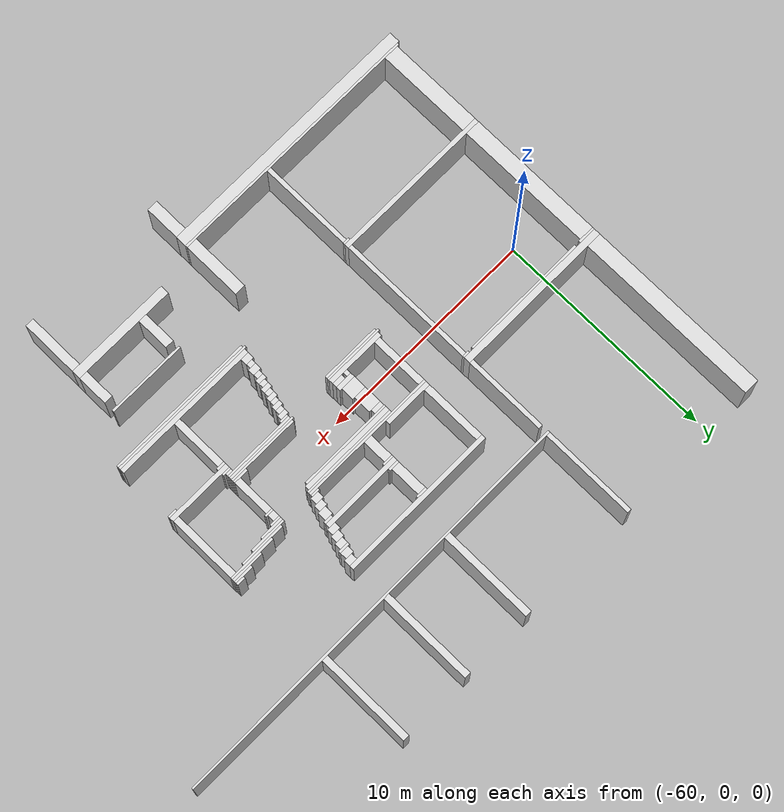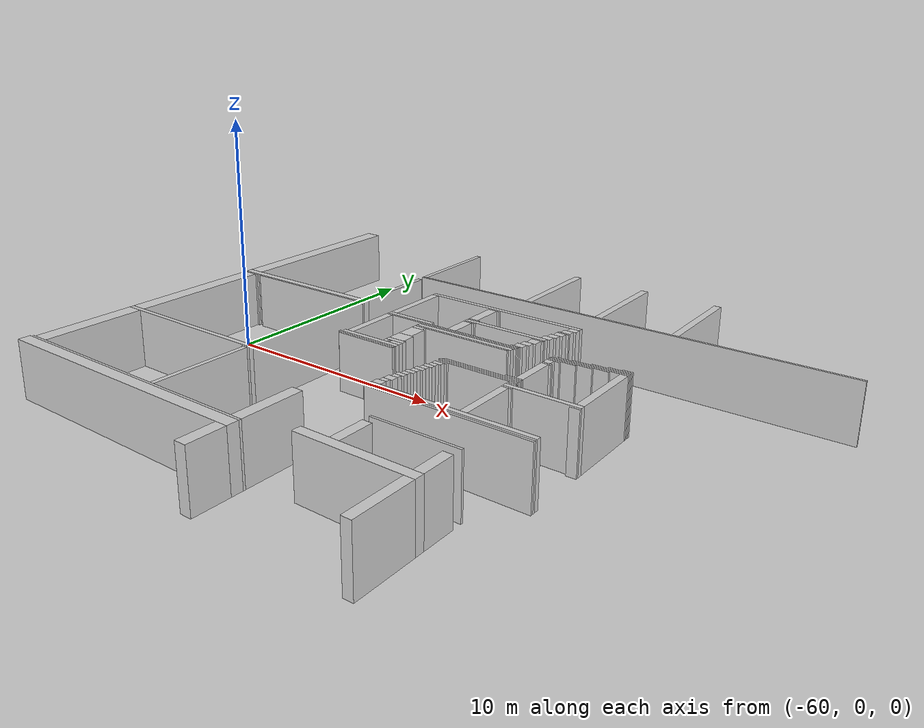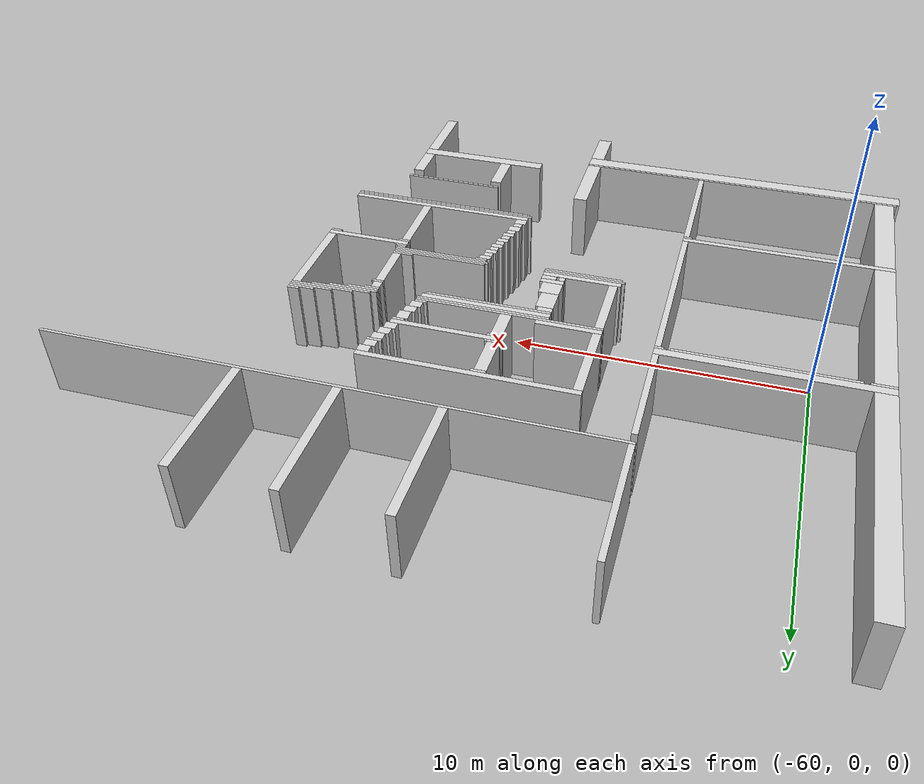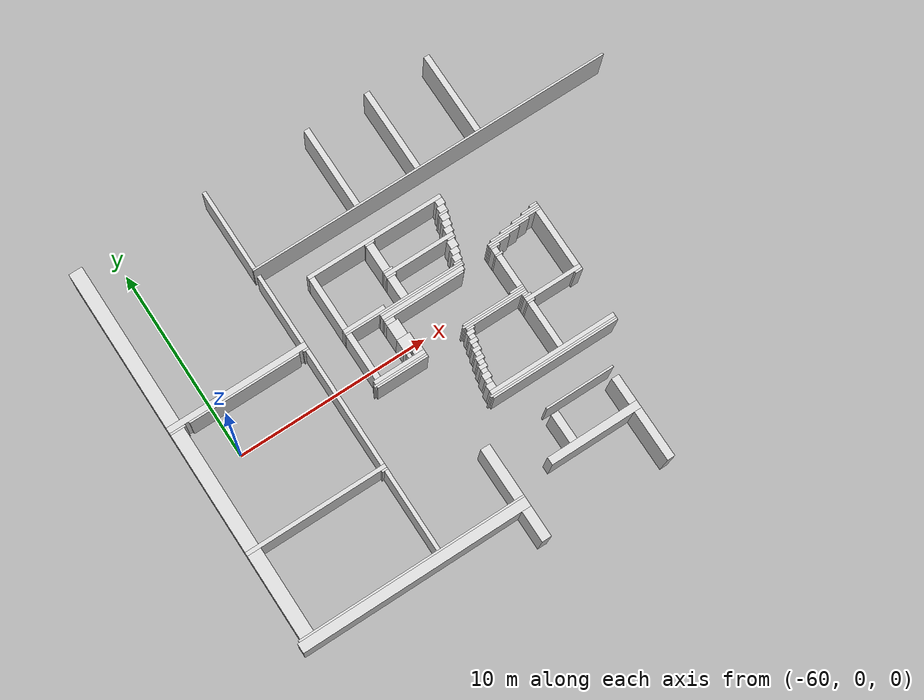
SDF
<sdf version="1.8">
 <model name="campus_first_floor">
  <static>true</static>
  <link name="wall_22">
   <pose>-46.20000 8.65000 1.25000 0 0 0</pose>
   <collision name="collision"><geometry><box><size>0.30000 4.30000 2.50000</size></box></geometry></collision>
   <visual name="visual">
    <geometry><box><size>0.30000 4.30000 2.50000</size></box></geometry>
    <material>
     <ambient>0.72 0.72 0.72 1</ambient>
     <diffuse>0.82 0.82 0.82 1</diffuse>
     <specular>0.05 0.05 0.05 1</specular>
    </material>
   </visual>
  </link>
  <link name="wall_24">
   <pose>-49.50000 8.65000 1.25000 0 0 0</pose>
   <collision name="collision"><geometry><box><size>0.30000 4.30000 2.50000</size></box></geometry></collision>
   <visual name="visual">
    <geometry><box><size>0.30000 4.30000 2.50000</size></box></geometry>
    <material>
     <ambient>0.72 0.72 0.72 1</ambient>
     <diffuse>0.82 0.82 0.82 1</diffuse>
     <specular>0.05 0.05 0.05 1</specular>
    </material>
   </visual>
  </link>
  <link name="wall_26">
   <pose>-55.05000 8.65000 1.25000 0 0 0</pose>
   <collision name="collision"><geometry><box><size>0.20000 4.30000 2.50000</size></box></geometry></collision>
   <visual name="visual">
    <geometry><box><size>0.20000 4.30000 2.50000</size></box></geometry>
    <material>
     <ambient>0.72 0.72 0.72 1</ambient>
     <diffuse>0.82 0.82 0.82 1</diffuse>
     <specular>0.05 0.05 0.05 1</specular>
    </material>
   </visual>
  </link>
  <link name="wall_27">
   <pose>-42.90000 8.65000 1.25000 0 0 0</pose>
   <collision name="collision"><geometry><box><size>0.30000 4.30000 2.50000</size></box></geometry></collision>
   <visual name="visual">
    <geometry><box><size>0.30000 4.30000 2.50000</size></box></geometry>
    <material>
     <ambient>0.72 0.72 0.72 1</ambient>
     <diffuse>0.82 0.82 0.82 1</diffuse>
     <specular>0.05 0.05 0.05 1</specular>
    </material>
   </visual>
  </link>
  <link name="wall_31">
   <pose>-45.55000 6.45000 1.25000 0 0 0</pose>
   <collision name="collision"><geometry><box><size>19.20000 0.10000 2.50000</size></box></geometry></collision>
   <visual name="visual">
    <geometry><box><size>19.20000 0.10000 2.50000</size></box></geometry>
    <material>
     <ambient>0.72 0.72 0.72 1</ambient>
     <diffuse>0.82 0.82 0.82 1</diffuse>
     <specular>0.05 0.05 0.05 1</specular>
    </material>
   </visual>
  </link>
  <link name="wall_52">
   <pose>-49.65000 4.80000 1.25000 0 0 0</pose>
   <collision name="collision"><geometry><box><size>7.20000 0.20000 2.50000</size></box></geometry></collision>
   <visual name="visual">
    <geometry><box><size>7.20000 0.20000 2.50000</size></box></geometry>
    <material>
     <ambient>0.72 0.72 0.72 1</ambient>
     <diffuse>0.82 0.82 0.82 1</diffuse>
     <specular>0.05 0.05 0.05 1</specular>
    </material>
   </visual>
  </link>
  <link name="wall_54">
   <pose>-50.00000 4.65000 1.25000 0 0 0</pose>
   <collision name="collision"><geometry><box><size>0.50000 0.10000 2.50000</size></box></geometry></collision>
   <visual name="visual">
    <geometry><box><size>0.50000 0.10000 2.50000</size></box></geometry>
    <material>
     <ambient>0.72 0.72 0.72 1</ambient>
     <diffuse>0.82 0.82 0.82 1</diffuse>
     <specular>0.05 0.05 0.05 1</specular>
    </material>
   </visual>
  </link>
  <link name="wall_56">
   <pose>-46.25000 4.55000 1.25000 0 0 0</pose>
   <collision name="collision"><geometry><box><size>0.40000 0.30000 2.50000</size></box></geometry></collision>
   <visual name="visual">
    <geometry><box><size>0.40000 0.30000 2.50000</size></box></geometry>
    <material>
     <ambient>0.72 0.72 0.72 1</ambient>
     <diffuse>0.82 0.82 0.82 1</diffuse>
     <specular>0.05 0.05 0.05 1</specular>
    </material>
   </visual>
  </link>
  <link name="wall_65">
   <pose>-46.35000 4.25000 1.25000 0 0 0</pose>
   <collision name="collision"><geometry><box><size>0.40000 0.30000 2.50000</size></box></geometry></collision>
   <visual name="visual">
    <geometry><box><size>0.40000 0.30000 2.50000</size></box></geometry>
    <material>
     <ambient>0.72 0.72 0.72 1</ambient>
     <diffuse>0.82 0.82 0.82 1</diffuse>
     <specular>0.05 0.05 0.05 1</specular>
    </material>
   </visual>
  </link>
  <link name="wall_68">
   <pose>-46.40000 4.05000 1.25000 0 0 0</pose>
   <collision name="collision"><geometry><box><size>0.50000 0.10000 2.50000</size></box></geometry></collision>
   <visual name="visual">
    <geometry><box><size>0.50000 0.10000 2.50000</size></box></geometry>
    <material>
     <ambient>0.72 0.72 0.72 1</ambient>
     <diffuse>0.82 0.82 0.82 1</diffuse>
     <specular>0.05 0.05 0.05 1</specular>
    </material>
   </visual>
  </link>
  <link name="wall_73">
   <pose>-46.45000 3.85000 1.25000 0 0 0</pose>
   <collision name="collision"><geometry><box><size>0.40000 0.30000 2.50000</size></box></geometry></collision>
   <visual name="visual">
    <geometry><box><size>0.40000 0.30000 2.50000</size></box></geometry>
    <material>
     <ambient>0.72 0.72 0.72 1</ambient>
     <diffuse>0.82 0.82 0.82 1</diffuse>
     <specular>0.05 0.05 0.05 1</specular>
    </material>
   </visual>
  </link>
  <link name="wall_80">
   <pose>-46.55000 3.55000 1.25000 0 0 0</pose>
   <collision name="collision"><geometry><box><size>0.40000 0.30000 2.50000</size></box></geometry></collision>
   <visual name="visual">
    <geometry><box><size>0.40000 0.30000 2.50000</size></box></geometry>
    <material>
     <ambient>0.72 0.72 0.72 1</ambient>
     <diffuse>0.82 0.82 0.82 1</diffuse>
     <specular>0.05 0.05 0.05 1</specular>
    </material>
   </visual>
  </link>
  <link name="wall_81">
   <pose>-50.05000 3.90000 1.25000 0 0 0</pose>
   <collision name="collision"><geometry><box><size>0.40000 1.40000 2.50000</size></box></geometry></collision>
   <visual name="visual">
    <geometry><box><size>0.40000 1.40000 2.50000</size></box></geometry>
    <material>
     <ambient>0.72 0.72 0.72 1</ambient>
     <diffuse>0.82 0.82 0.82 1</diffuse>
     <specular>0.05 0.05 0.05 1</specular>
    </material>
   </visual>
  </link>
  <link name="wall_82">
   <pose>-46.65000 3.25000 1.25000 0 0 0</pose>
   <collision name="collision"><geometry><box><size>0.40000 0.30000 2.50000</size></box></geometry></collision>
   <visual name="visual">
    <geometry><box><size>0.40000 0.30000 2.50000</size></box></geometry>
    <material>
     <ambient>0.72 0.72 0.72 1</ambient>
     <diffuse>0.82 0.82 0.82 1</diffuse>
     <specular>0.05 0.05 0.05 1</specular>
    </material>
   </visual>
  </link>
  <link name="wall_84">
   <pose>-50.00000 3.15000 1.25000 0 0 0</pose>
   <collision name="collision"><geometry><box><size>0.50000 0.10000 2.50000</size></box></geometry></collision>
   <visual name="visual">
    <geometry><box><size>0.50000 0.10000 2.50000</size></box></geometry>
    <material>
     <ambient>0.72 0.72 0.72 1</ambient>
     <diffuse>0.82 0.82 0.82 1</diffuse>
     <specular>0.05 0.05 0.05 1</specular>
    </material>
   </visual>
  </link>
  <link name="wall_91">
   <pose>-48.40000 3.00000 1.25000 0 0 0</pose>
   <collision name="collision"><geometry><box><size>3.70000 0.20000 2.50000</size></box></geometry></collision>
   <visual name="visual">
    <geometry><box><size>3.70000 0.20000 2.50000</size></box></geometry>
    <material>
     <ambient>0.72 0.72 0.72 1</ambient>
     <diffuse>0.82 0.82 0.82 1</diffuse>
     <specular>0.05 0.05 0.05 1</specular>
    </material>
   </visual>
  </link>
  <link name="wall_93">
   <pose>-46.75000 2.85000 1.25000 0 0 0</pose>
   <collision name="collision"><geometry><box><size>0.40000 0.10000 2.50000</size></box></geometry></collision>
   <visual name="visual">
    <geometry><box><size>0.40000 0.10000 2.50000</size></box></geometry>
    <material>
     <ambient>0.72 0.72 0.72 1</ambient>
     <diffuse>0.82 0.82 0.82 1</diffuse>
     <specular>0.05 0.05 0.05 1</specular>
    </material>
   </visual>
  </link>
  <link name="wall_94">
   <pose>-50.00000 2.85000 1.25000 0 0 0</pose>
   <collision name="collision"><geometry><box><size>0.50000 0.10000 2.50000</size></box></geometry></collision>
   <visual name="visual">
    <geometry><box><size>0.50000 0.10000 2.50000</size></box></geometry>
    <material>
     <ambient>0.72 0.72 0.72 1</ambient>
     <diffuse>0.82 0.82 0.82 1</diffuse>
     <specular>0.05 0.05 0.05 1</specular>
    </material>
   </visual>
  </link>
  <link name="wall_99">
   <pose>-46.85000 2.60000 1.25000 0 0 0</pose>
   <collision name="collision"><geometry><box><size>0.40000 0.40000 2.50000</size></box></geometry></collision>
   <visual name="visual">
    <geometry><box><size>0.40000 0.40000 2.50000</size></box></geometry>
    <material>
     <ambient>0.72 0.72 0.72 1</ambient>
     <diffuse>0.82 0.82 0.82 1</diffuse>
     <specular>0.05 0.05 0.05 1</specular>
    </material>
   </visual>
  </link>
  <link name="wall_100">
   <pose>-55.05000 4.25000 1.25000 0 0 0</pose>
   <collision name="collision"><geometry><box><size>0.20000 3.70000 2.50000</size></box></geometry></collision>
   <visual name="visual">
    <geometry><box><size>0.20000 3.70000 2.50000</size></box></geometry>
    <material>
     <ambient>0.72 0.72 0.72 1</ambient>
     <diffuse>0.82 0.82 0.82 1</diffuse>
     <specular>0.05 0.05 0.05 1</specular>
    </material>
   </visual>
  </link>
  <link name="wall_101">
   <pose>-61.90000 6.60000 1.25000 0 0 0</pose>
   <collision name="collision"><geometry><box><size>0.70000 8.40000 2.50000</size></box></geometry></collision>
   <visual name="visual">
    <geometry><box><size>0.70000 8.40000 2.50000</size></box></geometry>
    <material>
     <ambient>0.72 0.72 0.72 1</ambient>
     <diffuse>0.82 0.82 0.82 1</diffuse>
     <specular>0.05 0.05 0.05 1</specular>
    </material>
   </visual>
  </link>
  <link name="wall_104">
   <pose>-46.95000 2.25000 1.25000 0 0 0</pose>
   <collision name="collision"><geometry><box><size>0.40000 0.30000 2.50000</size></box></geometry></collision>
   <visual name="visual">
    <geometry><box><size>0.40000 0.30000 2.50000</size></box></geometry>
    <material>
     <ambient>0.72 0.72 0.72 1</ambient>
     <diffuse>0.82 0.82 0.82 1</diffuse>
     <specular>0.05 0.05 0.05 1</specular>
    </material>
   </visual>
  </link>
  <link name="wall_105">
   <pose>-58.60000 2.25000 1.25000 0 0 0</pose>
   <collision name="collision"><geometry><box><size>7.30000 0.30000 2.50000</size></box></geometry></collision>
   <visual name="visual">
    <geometry><box><size>7.30000 0.30000 2.50000</size></box></geometry>
    <material>
     <ambient>0.72 0.72 0.72 1</ambient>
     <diffuse>0.82 0.82 0.82 1</diffuse>
     <specular>0.05 0.05 0.05 1</specular>
    </material>
   </visual>
  </link>
  <link name="wall_106">
   <pose>-42.75000 2.15000 1.25000 0 0 0</pose>
   <collision name="collision"><geometry><box><size>0.40000 0.10000 2.50000</size></box></geometry></collision>
   <visual name="visual">
    <geometry><box><size>0.40000 0.10000 2.50000</size></box></geometry>
    <material>
     <ambient>0.72 0.72 0.72 1</ambient>
     <diffuse>0.82 0.82 0.82 1</diffuse>
     <specular>0.05 0.05 0.05 1</specular>
    </material>
   </visual>
  </link>
  <link name="wall_107">
   <pose>-58.35000 2.05000 1.25000 0 0 0</pose>
   <collision name="collision"><geometry><box><size>5.80000 0.10000 2.50000</size></box></geometry></collision>
   <visual name="visual">
    <geometry><box><size>5.80000 0.10000 2.50000</size></box></geometry>
    <material>
     <ambient>0.72 0.72 0.72 1</ambient>
     <diffuse>0.82 0.82 0.82 1</diffuse>
     <specular>0.05 0.05 0.05 1</specular>
    </material>
   </visual>
  </link>
  <link name="wall_109">
   <pose>-55.10000 2.05000 1.25000 0 0 0</pose>
   <collision name="collision"><geometry><box><size>0.30000 0.10000 2.50000</size></box></geometry></collision>
   <visual name="visual">
    <geometry><box><size>0.30000 0.10000 2.50000</size></box></geometry>
    <material>
     <ambient>0.72 0.72 0.72 1</ambient>
     <diffuse>0.82 0.82 0.82 1</diffuse>
     <specular>0.05 0.05 0.05 1</specular>
    </material>
   </visual>
  </link>
  <link name="wall_110">
   <pose>-43.00000 2.05000 1.25000 0 0 0</pose>
   <collision name="collision"><geometry><box><size>0.90000 0.10000 2.50000</size></box></geometry></collision>
   <visual name="visual">
    <geometry><box><size>0.90000 0.10000 2.50000</size></box></geometry>
    <material>
     <ambient>0.72 0.72 0.72 1</ambient>
     <diffuse>0.82 0.82 0.82 1</diffuse>
     <specular>0.05 0.05 0.05 1</specular>
    </material>
   </visual>
  </link>
  <link name="wall_111">
   <pose>-61.85000 2.05000 1.25000 0 0 0</pose>
   <collision name="collision"><geometry><box><size>0.80000 0.10000 2.50000</size></box></geometry></collision>
   <visual name="visual">
    <geometry><box><size>0.80000 0.10000 2.50000</size></box></geometry>
    <material>
     <ambient>0.72 0.72 0.72 1</ambient>
     <diffuse>0.82 0.82 0.82 1</diffuse>
     <specular>0.05 0.05 0.05 1</specular>
    </material>
   </visual>
  </link>
  <link name="wall_112">
   <pose>-53.10000 3.30000 1.25000 0 0 0</pose>
   <collision name="collision"><geometry><box><size>0.30000 2.80000 2.50000</size></box></geometry></collision>
   <visual name="visual">
    <geometry><box><size>0.30000 2.80000 2.50000</size></box></geometry>
    <material>
     <ambient>0.72 0.72 0.72 1</ambient>
     <diffuse>0.82 0.82 0.82 1</diffuse>
     <specular>0.05 0.05 0.05 1</specular>
    </material>
   </visual>
  </link>
  <link name="wall_114">
   <pose>-43.30000 1.95000 1.25000 0 0 0</pose>
   <collision name="collision"><geometry><box><size>1.50000 0.10000 2.50000</size></box></geometry></collision>
   <visual name="visual">
    <geometry><box><size>1.50000 0.10000 2.50000</size></box></geometry>
    <material>
     <ambient>0.72 0.72 0.72 1</ambient>
     <diffuse>0.82 0.82 0.82 1</diffuse>
     <specular>0.05 0.05 0.05 1</specular>
    </material>
   </visual>
  </link>
  <link name="wall_115">
   <pose>-43.65000 1.85000 1.25000 0 0 0</pose>
   <collision name="collision"><geometry><box><size>2.20000 0.10000 2.50000</size></box></geometry></collision>
   <visual name="visual">
    <geometry><box><size>2.20000 0.10000 2.50000</size></box></geometry>
    <material>
     <ambient>0.72 0.72 0.72 1</ambient>
     <diffuse>0.82 0.82 0.82 1</diffuse>
     <specular>0.05 0.05 0.05 1</specular>
    </material>
   </visual>
  </link>
  <link name="wall_116">
   <pose>-47.05000 1.95000 1.25000 0 0 0</pose>
   <collision name="collision"><geometry><box><size>0.40000 0.30000 2.50000</size></box></geometry></collision>
   <visual name="visual">
    <geometry><box><size>0.40000 0.30000 2.50000</size></box></geometry>
    <material>
     <ambient>0.72 0.72 0.72 1</ambient>
     <diffuse>0.82 0.82 0.82 1</diffuse>
     <specular>0.05 0.05 0.05 1</specular>
    </material>
   </visual>
  </link>
  <link name="wall_117">
   <pose>-47.15000 1.75000 1.25000 0 0 0</pose>
   <collision name="collision"><geometry><box><size>0.40000 0.10000 2.50000</size></box></geometry></collision>
   <visual name="visual">
    <geometry><box><size>0.40000 0.10000 2.50000</size></box></geometry>
    <material>
     <ambient>0.72 0.72 0.72 1</ambient>
     <diffuse>0.82 0.82 0.82 1</diffuse>
     <specular>0.05 0.05 0.05 1</specular>
    </material>
   </visual>
  </link>
  <link name="wall_118">
   <pose>-44.30000 1.75000 1.25000 0 0 0</pose>
   <collision name="collision"><geometry><box><size>2.10000 0.10000 2.50000</size></box></geometry></collision>
   <visual name="visual">
    <geometry><box><size>2.10000 0.10000 2.50000</size></box></geometry>
    <material>
     <ambient>0.72 0.72 0.72 1</ambient>
     <diffuse>0.82 0.82 0.82 1</diffuse>
     <specular>0.05 0.05 0.05 1</specular>
    </material>
   </visual>
  </link>
  <link name="wall_119">
   <pose>-52.15000 1.80000 1.25000 0 0 0</pose>
   <collision name="collision"><geometry><box><size>2.20000 0.20000 2.50000</size></box></geometry></collision>
   <visual name="visual">
    <geometry><box><size>2.20000 0.20000 2.50000</size></box></geometry>
    <material>
     <ambient>0.72 0.72 0.72 1</ambient>
     <diffuse>0.82 0.82 0.82 1</diffuse>
     <specular>0.05 0.05 0.05 1</specular>
    </material>
   </visual>
  </link>
  <link name="wall_120">
   <pose>-50.05000 2.25000 1.25000 0 0 0</pose>
   <collision name="collision"><geometry><box><size>0.40000 1.10000 2.50000</size></box></geometry></collision>
   <visual name="visual">
    <geometry><box><size>0.40000 1.10000 2.50000</size></box></geometry>
    <material>
     <ambient>0.72 0.72 0.72 1</ambient>
     <diffuse>0.82 0.82 0.82 1</diffuse>
     <specular>0.05 0.05 0.05 1</specular>
    </material>
   </visual>
  </link>
  <link name="wall_121">
   <pose>-44.70000 1.65000 1.25000 0 0 0</pose>
   <collision name="collision"><geometry><box><size>1.70000 0.10000 2.50000</size></box></geometry></collision>
   <visual name="visual">
    <geometry><box><size>1.70000 0.10000 2.50000</size></box></geometry>
    <material>
     <ambient>0.72 0.72 0.72 1</ambient>
     <diffuse>0.82 0.82 0.82 1</diffuse>
     <specular>0.05 0.05 0.05 1</specular>
    </material>
   </visual>
  </link>
  <link name="wall_122">
   <pose>-50.10000 1.65000 1.25000 0 0 0</pose>
   <collision name="collision"><geometry><box><size>6.30000 0.10000 2.50000</size></box></geometry></collision>
   <visual name="visual">
    <geometry><box><size>6.30000 0.10000 2.50000</size></box></geometry>
    <material>
     <ambient>0.72 0.72 0.72 1</ambient>
     <diffuse>0.82 0.82 0.82 1</diffuse>
     <specular>0.05 0.05 0.05 1</specular>
    </material>
   </visual>
  </link>
  <link name="wall_124">
   <pose>-49.20000 1.55000 1.25000 0 0 0</pose>
   <collision name="collision"><geometry><box><size>4.50000 0.10000 2.50000</size></box></geometry></collision>
   <visual name="visual">
    <geometry><box><size>4.50000 0.10000 2.50000</size></box></geometry>
    <material>
     <ambient>0.72 0.72 0.72 1</ambient>
     <diffuse>0.82 0.82 0.82 1</diffuse>
     <specular>0.05 0.05 0.05 1</specular>
    </material>
   </visual>
  </link>
  <link name="wall_125">
   <pose>-45.00000 1.55000 1.25000 0 0 0</pose>
   <collision name="collision"><geometry><box><size>1.10000 0.10000 2.50000</size></box></geometry></collision>
   <visual name="visual">
    <geometry><box><size>1.10000 0.10000 2.50000</size></box></geometry>
    <material>
     <ambient>0.72 0.72 0.72 1</ambient>
     <diffuse>0.82 0.82 0.82 1</diffuse>
     <specular>0.05 0.05 0.05 1</specular>
    </material>
   </visual>
  </link>
  <link name="wall_126">
   <pose>-45.30000 1.45000 1.25000 0 0 0</pose>
   <collision name="collision"><geometry><box><size>0.50000 0.10000 2.50000</size></box></geometry></collision>
   <visual name="visual">
    <geometry><box><size>0.50000 0.10000 2.50000</size></box></geometry>
    <material>
     <ambient>0.72 0.72 0.72 1</ambient>
     <diffuse>0.82 0.82 0.82 1</diffuse>
     <specular>0.05 0.05 0.05 1</specular>
    </material>
   </visual>
  </link>
  <link name="wall_127">
   <pose>-49.25000 1.40000 1.25000 0 0 0</pose>
   <collision name="collision"><geometry><box><size>4.40000 0.20000 2.50000</size></box></geometry></collision>
   <visual name="visual">
    <geometry><box><size>4.40000 0.20000 2.50000</size></box></geometry>
    <material>
     <ambient>0.72 0.72 0.72 1</ambient>
     <diffuse>0.82 0.82 0.82 1</diffuse>
     <specular>0.05 0.05 0.05 1</specular>
    </material>
   </visual>
  </link>
  <link name="wall_129">
   <pose>-49.30000 1.25000 1.25000 0 0 0</pose>
   <collision name="collision"><geometry><box><size>4.30000 0.10000 2.50000</size></box></geometry></collision>
   <visual name="visual">
    <geometry><box><size>4.30000 0.10000 2.50000</size></box></geometry>
    <material>
     <ambient>0.72 0.72 0.72 1</ambient>
     <diffuse>0.82 0.82 0.82 1</diffuse>
     <specular>0.05 0.05 0.05 1</specular>
    </material>
   </visual>
  </link>
  <link name="wall_130">
   <pose>-45.40000 1.25000 1.25000 0 0 0</pose>
   <collision name="collision"><geometry><box><size>0.30000 0.30000 2.50000</size></box></geometry></collision>
   <visual name="visual">
    <geometry><box><size>0.30000 0.30000 2.50000</size></box></geometry>
    <material>
     <ambient>0.72 0.72 0.72 1</ambient>
     <diffuse>0.82 0.82 0.82 1</diffuse>
     <specular>0.05 0.05 0.05 1</specular>
    </material>
   </visual>
  </link>
  <link name="wall_131">
   <pose>-51.20000 1.10000 1.25000 0 0 0</pose>
   <collision name="collision"><geometry><box><size>0.50000 0.20000 2.50000</size></box></geometry></collision>
   <visual name="visual">
    <geometry><box><size>0.50000 0.20000 2.50000</size></box></geometry>
    <material>
     <ambient>0.72 0.72 0.72 1</ambient>
     <diffuse>0.82 0.82 0.82 1</diffuse>
     <specular>0.05 0.05 0.05 1</specular>
    </material>
   </visual>
  </link>
  <link name="wall_132">
   <pose>-45.35000 1.05000 1.25000 0 0 0</pose>
   <collision name="collision"><geometry><box><size>0.40000 0.10000 2.50000</size></box></geometry></collision>
   <visual name="visual">
    <geometry><box><size>0.40000 0.10000 2.50000</size></box></geometry>
    <material>
     <ambient>0.72 0.72 0.72 1</ambient>
     <diffuse>0.82 0.82 0.82 1</diffuse>
     <specular>0.05 0.05 0.05 1</specular>
    </material>
   </visual>
  </link>
  <link name="wall_145">
   <pose>-51.15000 0.60000 1.25000 0 0 0</pose>
   <collision name="collision"><geometry><box><size>0.60000 0.80000 2.50000</size></box></geometry></collision>
   <visual name="visual">
    <geometry><box><size>0.60000 0.80000 2.50000</size></box></geometry>
    <material>
     <ambient>0.72 0.72 0.72 1</ambient>
     <diffuse>0.82 0.82 0.82 1</diffuse>
     <specular>0.05 0.05 0.05 1</specular>
    </material>
   </visual>
  </link>
  <link name="wall_183">
   <pose>-51.10000 -0.10000 1.25000 0 0 0</pose>
   <collision name="collision"><geometry><box><size>0.70000 0.60000 2.50000</size></box></geometry></collision>
   <visual name="visual">
    <geometry><box><size>0.70000 0.60000 2.50000</size></box></geometry>
    <material>
     <ambient>0.72 0.72 0.72 1</ambient>
     <diffuse>0.82 0.82 0.82 1</diffuse>
     <specular>0.05 0.05 0.05 1</specular>
    </material>
   </visual>
  </link>
  <link name="wall_192">
   <pose>-51.05000 -0.50000 1.25000 0 0 0</pose>
   <collision name="collision"><geometry><box><size>0.80000 0.20000 2.50000</size></box></geometry></collision>
   <visual name="visual">
    <geometry><box><size>0.80000 0.20000 2.50000</size></box></geometry>
    <material>
     <ambient>0.72 0.72 0.72 1</ambient>
     <diffuse>0.82 0.82 0.82 1</diffuse>
     <specular>0.05 0.05 0.05 1</specular>
    </material>
   </visual>
  </link>
  <link name="wall_195">
   <pose>-45.40000 0.15000 1.25000 0 0 0</pose>
   <collision name="collision"><geometry><box><size>0.30000 1.70000 2.50000</size></box></geometry></collision>
   <visual name="visual">
    <geometry><box><size>0.30000 1.70000 2.50000</size></box></geometry>
    <material>
     <ambient>0.72 0.72 0.72 1</ambient>
     <diffuse>0.82 0.82 0.82 1</diffuse>
     <specular>0.05 0.05 0.05 1</specular>
    </material>
   </visual>
  </link>
  <link name="wall_196">
   <pose>-53.10000 0.40000 1.25000 0 0 0</pose>
   <collision name="collision"><geometry><box><size>0.30000 2.40000 2.50000</size></box></geometry></collision>
   <visual name="visual">
    <geometry><box><size>0.30000 2.40000 2.50000</size></box></geometry>
    <material>
     <ambient>0.72 0.72 0.72 1</ambient>
     <diffuse>0.82 0.82 0.82 1</diffuse>
     <specular>0.05 0.05 0.05 1</specular>
    </material>
   </visual>
  </link>
  <link name="wall_197">
   <pose>-45.60000 -0.75000 1.25000 0 0 0</pose>
   <collision name="collision"><geometry><box><size>0.70000 0.10000 2.50000</size></box></geometry></collision>
   <visual name="visual">
    <geometry><box><size>0.70000 0.10000 2.50000</size></box></geometry>
    <material>
     <ambient>0.72 0.72 0.72 1</ambient>
     <diffuse>0.82 0.82 0.82 1</diffuse>
     <specular>0.05 0.05 0.05 1</specular>
    </material>
   </visual>
  </link>
  <link name="wall_198">
   <pose>-50.90000 -0.70000 1.25000 0 0 0</pose>
   <collision name="collision"><geometry><box><size>0.50000 0.20000 2.50000</size></box></geometry></collision>
   <visual name="visual">
    <geometry><box><size>0.50000 0.20000 2.50000</size></box></geometry>
    <material>
     <ambient>0.72 0.72 0.72 1</ambient>
     <diffuse>0.82 0.82 0.82 1</diffuse>
     <specular>0.05 0.05 0.05 1</specular>
    </material>
   </visual>
  </link>
  <link name="wall_199">
   <pose>-51.35000 -0.70000 1.25000 0 0 0</pose>
   <collision name="collision"><geometry><box><size>0.20000 0.20000 2.50000</size></box></geometry></collision>
   <visual name="visual">
    <geometry><box><size>0.20000 0.20000 2.50000</size></box></geometry>
    <material>
     <ambient>0.72 0.72 0.72 1</ambient>
     <diffuse>0.82 0.82 0.82 1</diffuse>
     <specular>0.05 0.05 0.05 1</specular>
    </material>
   </visual>
  </link>
  <link name="wall_201">
   <pose>-46.90000 -0.85000 1.25000 0 0 0</pose>
   <collision name="collision"><geometry><box><size>3.30000 0.10000 2.50000</size></box></geometry></collision>
   <visual name="visual">
    <geometry><box><size>3.30000 0.10000 2.50000</size></box></geometry>
    <material>
     <ambient>0.72 0.72 0.72 1</ambient>
     <diffuse>0.82 0.82 0.82 1</diffuse>
     <specular>0.05 0.05 0.05 1</specular>
    </material>
   </visual>
  </link>
  <link name="wall_202">
   <pose>-46.95000 -0.95000 1.25000 0 0 0</pose>
   <collision name="collision"><geometry><box><size>3.40000 0.10000 2.50000</size></box></geometry></collision>
   <visual name="visual">
    <geometry><box><size>3.40000 0.10000 2.50000</size></box></geometry>
    <material>
     <ambient>0.72 0.72 0.72 1</ambient>
     <diffuse>0.82 0.82 0.82 1</diffuse>
     <specular>0.05 0.05 0.05 1</specular>
    </material>
   </visual>
  </link>
  <link name="wall_203">
   <pose>-52.00000 -0.90000 1.25000 0 0 0</pose>
   <collision name="collision"><geometry><box><size>2.70000 0.20000 2.50000</size></box></geometry></collision>
   <visual name="visual">
    <geometry><box><size>2.70000 0.20000 2.50000</size></box></geometry>
    <material>
     <ambient>0.72 0.72 0.72 1</ambient>
     <diffuse>0.82 0.82 0.82 1</diffuse>
     <specular>0.05 0.05 0.05 1</specular>
    </material>
   </visual>
  </link>
  <link name="wall_205">
   <pose>-52.05000 -1.05000 1.25000 0 0 0</pose>
   <collision name="collision"><geometry><box><size>2.80000 0.10000 2.50000</size></box></geometry></collision>
   <visual name="visual">
    <geometry><box><size>2.80000 0.10000 2.50000</size></box></geometry>
    <material>
     <ambient>0.72 0.72 0.72 1</ambient>
     <diffuse>0.82 0.82 0.82 1</diffuse>
     <specular>0.05 0.05 0.05 1</specular>
    </material>
   </visual>
  </link>
  <link name="wall_208">
   <pose>-46.90000 -1.05000 1.25000 0 0 0</pose>
   <collision name="collision"><geometry><box><size>3.30000 0.10000 2.50000</size></box></geometry></collision>
   <visual name="visual">
    <geometry><box><size>3.30000 0.10000 2.50000</size></box></geometry>
    <material>
     <ambient>0.72 0.72 0.72 1</ambient>
     <diffuse>0.82 0.82 0.82 1</diffuse>
     <specular>0.05 0.05 0.05 1</specular>
    </material>
   </visual>
  </link>
  <link name="wall_209">
   <pose>-45.40000 -1.15000 1.25000 0 0 0</pose>
   <collision name="collision"><geometry><box><size>0.30000 0.10000 2.50000</size></box></geometry></collision>
   <visual name="visual">
    <geometry><box><size>0.30000 0.10000 2.50000</size></box></geometry>
    <material>
     <ambient>0.72 0.72 0.72 1</ambient>
     <diffuse>0.82 0.82 0.82 1</diffuse>
     <specular>0.05 0.05 0.05 1</specular>
    </material>
   </visual>
  </link>
  <link name="wall_210">
   <pose>-48.35000 -1.15000 1.25000 0 0 0</pose>
   <collision name="collision"><geometry><box><size>0.40000 0.10000 2.50000</size></box></geometry></collision>
   <visual name="visual">
    <geometry><box><size>0.40000 0.10000 2.50000</size></box></geometry>
    <material>
     <ambient>0.72 0.72 0.72 1</ambient>
     <diffuse>0.82 0.82 0.82 1</diffuse>
     <specular>0.05 0.05 0.05 1</specular>
    </material>
   </visual>
  </link>
  <link name="wall_211">
   <pose>-52.00000 -1.15000 1.25000 0 0 0</pose>
   <collision name="collision"><geometry><box><size>2.70000 0.10000 2.50000</size></box></geometry></collision>
   <visual name="visual">
    <geometry><box><size>2.70000 0.10000 2.50000</size></box></geometry>
    <material>
     <ambient>0.72 0.72 0.72 1</ambient>
     <diffuse>0.82 0.82 0.82 1</diffuse>
     <specular>0.05 0.05 0.05 1</specular>
    </material>
   </visual>
  </link>
  <link name="wall_213">
   <pose>-45.35000 -1.25000 1.25000 0 0 0</pose>
   <collision name="collision"><geometry><box><size>0.40000 0.10000 2.50000</size></box></geometry></collision>
   <visual name="visual">
    <geometry><box><size>0.40000 0.10000 2.50000</size></box></geometry>
    <material>
     <ambient>0.72 0.72 0.72 1</ambient>
     <diffuse>0.82 0.82 0.82 1</diffuse>
     <specular>0.05 0.05 0.05 1</specular>
    </material>
   </visual>
  </link>
  <link name="wall_216">
   <pose>-42.70000 0.25000 1.25000 0 0 0</pose>
   <collision name="collision"><geometry><box><size>0.30000 3.10000 2.50000</size></box></geometry></collision>
   <visual name="visual">
    <geometry><box><size>0.30000 3.10000 2.50000</size></box></geometry>
    <material>
     <ambient>0.72 0.72 0.72 1</ambient>
     <diffuse>0.82 0.82 0.82 1</diffuse>
     <specular>0.05 0.05 0.05 1</specular>
    </material>
   </visual>
  </link>
  <link name="wall_217">
   <pose>-48.45000 -1.30000 1.25000 0 0 0</pose>
   <collision name="collision"><geometry><box><size>0.40000 0.20000 2.50000</size></box></geometry></collision>
   <visual name="visual">
    <geometry><box><size>0.40000 0.20000 2.50000</size></box></geometry>
    <material>
     <ambient>0.72 0.72 0.72 1</ambient>
     <diffuse>0.82 0.82 0.82 1</diffuse>
     <specular>0.05 0.05 0.05 1</specular>
    </material>
   </visual>
  </link>
  <link name="wall_221">
   <pose>-44.05000 -1.40000 1.25000 0 0 0</pose>
   <collision name="collision"><geometry><box><size>3.00000 0.20000 2.50000</size></box></geometry></collision>
   <visual name="visual">
    <geometry><box><size>3.00000 0.20000 2.50000</size></box></geometry>
    <material>
     <ambient>0.72 0.72 0.72 1</ambient>
     <diffuse>0.82 0.82 0.82 1</diffuse>
     <specular>0.05 0.05 0.05 1</specular>
    </material>
   </visual>
  </link>
  <link name="wall_222">
   <pose>-45.35000 -1.55000 1.25000 0 0 0</pose>
   <collision name="collision"><geometry><box><size>0.40000 0.10000 2.50000</size></box></geometry></collision>
   <visual name="visual">
    <geometry><box><size>0.40000 0.10000 2.50000</size></box></geometry>
    <material>
     <ambient>0.72 0.72 0.72 1</ambient>
     <diffuse>0.82 0.82 0.82 1</diffuse>
     <specular>0.05 0.05 0.05 1</specular>
    </material>
   </visual>
  </link>
  <link name="wall_225">
   <pose>-48.50000 -1.50000 1.25000 0 0 0</pose>
   <collision name="collision"><geometry><box><size>0.30000 0.20000 2.50000</size></box></geometry></collision>
   <visual name="visual">
    <geometry><box><size>0.30000 0.20000 2.50000</size></box></geometry>
    <material>
     <ambient>0.72 0.72 0.72 1</ambient>
     <diffuse>0.82 0.82 0.82 1</diffuse>
     <specular>0.05 0.05 0.05 1</specular>
    </material>
   </visual>
  </link>
  <link name="wall_226">
   <pose>-42.75000 -1.55000 1.25000 0 0 0</pose>
   <collision name="collision"><geometry><box><size>0.40000 0.10000 2.50000</size></box></geometry></collision>
   <visual name="visual">
    <geometry><box><size>0.40000 0.10000 2.50000</size></box></geometry>
    <material>
     <ambient>0.72 0.72 0.72 1</ambient>
     <diffuse>0.82 0.82 0.82 1</diffuse>
     <specular>0.05 0.05 0.05 1</specular>
    </material>
   </visual>
  </link>
  <link name="wall_230">
   <pose>-48.55000 -1.70000 1.25000 0 0 0</pose>
   <collision name="collision"><geometry><box><size>0.40000 0.20000 2.50000</size></box></geometry></collision>
   <visual name="visual">
    <geometry><box><size>0.40000 0.20000 2.50000</size></box></geometry>
    <material>
     <ambient>0.72 0.72 0.72 1</ambient>
     <diffuse>0.82 0.82 0.82 1</diffuse>
     <specular>0.05 0.05 0.05 1</specular>
    </material>
   </visual>
  </link>
  <link name="wall_233">
   <pose>-48.60000 -1.90000 1.25000 0 0 0</pose>
   <collision name="collision"><geometry><box><size>0.30000 0.20000 2.50000</size></box></geometry></collision>
   <visual name="visual">
    <geometry><box><size>0.30000 0.20000 2.50000</size></box></geometry>
    <material>
     <ambient>0.72 0.72 0.72 1</ambient>
     <diffuse>0.82 0.82 0.82 1</diffuse>
     <specular>0.05 0.05 0.05 1</specular>
    </material>
   </visual>
  </link>
  <link name="wall_235">
   <pose>-48.65000 -2.10000 1.25000 0 0 0</pose>
   <collision name="collision"><geometry><box><size>0.40000 0.20000 2.50000</size></box></geometry></collision>
   <visual name="visual">
    <geometry><box><size>0.40000 0.20000 2.50000</size></box></geometry>
    <material>
     <ambient>0.72 0.72 0.72 1</ambient>
     <diffuse>0.82 0.82 0.82 1</diffuse>
     <specular>0.05 0.05 0.05 1</specular>
    </material>
   </visual>
  </link>
  <link name="wall_239">
   <pose>-48.70000 -2.30000 1.25000 0 0 0</pose>
   <collision name="collision"><geometry><box><size>0.30000 0.20000 2.50000</size></box></geometry></collision>
   <visual name="visual">
    <geometry><box><size>0.30000 0.20000 2.50000</size></box></geometry>
    <material>
     <ambient>0.72 0.72 0.72 1</ambient>
     <diffuse>0.82 0.82 0.82 1</diffuse>
     <specular>0.05 0.05 0.05 1</specular>
    </material>
   </visual>
  </link>
  <link name="wall_240">
   <pose>-48.75000 -2.50000 1.25000 0 0 0</pose>
   <collision name="collision"><geometry><box><size>0.40000 0.20000 2.50000</size></box></geometry></collision>
   <visual name="visual">
    <geometry><box><size>0.40000 0.20000 2.50000</size></box></geometry>
    <material>
     <ambient>0.72 0.72 0.72 1</ambient>
     <diffuse>0.82 0.82 0.82 1</diffuse>
     <specular>0.05 0.05 0.05 1</specular>
    </material>
   </visual>
  </link>
  <link name="wall_246">
   <pose>-48.80000 -2.70000 1.25000 0 0 0</pose>
   <collision name="collision"><geometry><box><size>0.30000 0.20000 2.50000</size></box></geometry></collision>
   <visual name="visual">
    <geometry><box><size>0.30000 0.20000 2.50000</size></box></geometry>
    <material>
     <ambient>0.72 0.72 0.72 1</ambient>
     <diffuse>0.82 0.82 0.82 1</diffuse>
     <specular>0.05 0.05 0.05 1</specular>
    </material>
   </visual>
  </link>
  <link name="wall_250">
   <pose>-48.85000 -2.90000 1.25000 0 0 0</pose>
   <collision name="collision"><geometry><box><size>0.40000 0.20000 2.50000</size></box></geometry></collision>
   <visual name="visual">
    <geometry><box><size>0.40000 0.20000 2.50000</size></box></geometry>
    <material>
     <ambient>0.72 0.72 0.72 1</ambient>
     <diffuse>0.82 0.82 0.82 1</diffuse>
     <specular>0.05 0.05 0.05 1</specular>
    </material>
   </visual>
  </link>
  <link name="wall_258">
   <pose>-48.90000 -3.10000 1.25000 0 0 0</pose>
   <collision name="collision"><geometry><box><size>0.30000 0.20000 2.50000</size></box></geometry></collision>
   <visual name="visual">
    <geometry><box><size>0.30000 0.20000 2.50000</size></box></geometry>
    <material>
     <ambient>0.72 0.72 0.72 1</ambient>
     <diffuse>0.82 0.82 0.82 1</diffuse>
     <specular>0.05 0.05 0.05 1</specular>
    </material>
   </visual>
  </link>
  <link name="wall_263">
   <pose>-48.95000 -3.35000 1.25000 0 0 0</pose>
   <collision name="collision"><geometry><box><size>0.40000 0.30000 2.50000</size></box></geometry></collision>
   <visual name="visual">
    <geometry><box><size>0.40000 0.30000 2.50000</size></box></geometry>
    <material>
     <ambient>0.72 0.72 0.72 1</ambient>
     <diffuse>0.82 0.82 0.82 1</diffuse>
     <specular>0.05 0.05 0.05 1</specular>
    </material>
   </visual>
  </link>
  <link name="wall_267">
   <pose>-49.00000 -3.60000 1.25000 0 0 0</pose>
   <collision name="collision"><geometry><box><size>0.30000 0.20000 2.50000</size></box></geometry></collision>
   <visual name="visual">
    <geometry><box><size>0.30000 0.20000 2.50000</size></box></geometry>
    <material>
     <ambient>0.72 0.72 0.72 1</ambient>
     <diffuse>0.82 0.82 0.82 1</diffuse>
     <specular>0.05 0.05 0.05 1</specular>
    </material>
   </visual>
  </link>
  <link name="wall_269">
   <pose>-45.40000 -2.80000 1.25000 0 0 0</pose>
   <collision name="collision"><geometry><box><size>0.30000 2.40000 2.50000</size></box></geometry></collision>
   <visual name="visual">
    <geometry><box><size>0.30000 2.40000 2.50000</size></box></geometry>
    <material>
     <ambient>0.72 0.72 0.72 1</ambient>
     <diffuse>0.82 0.82 0.82 1</diffuse>
     <specular>0.05 0.05 0.05 1</specular>
    </material>
   </visual>
  </link>
  <link name="wall_271">
   <pose>-49.05000 -3.85000 1.25000 0 0 0</pose>
   <collision name="collision"><geometry><box><size>0.40000 0.30000 2.50000</size></box></geometry></collision>
   <visual name="visual">
    <geometry><box><size>0.40000 0.30000 2.50000</size></box></geometry>
    <material>
     <ambient>0.72 0.72 0.72 1</ambient>
     <diffuse>0.82 0.82 0.82 1</diffuse>
     <specular>0.05 0.05 0.05 1</specular>
    </material>
   </visual>
  </link>
  <link name="wall_277">
   <pose>-45.90000 -4.10000 1.25000 0 0 0</pose>
   <collision name="collision"><geometry><box><size>6.70000 0.20000 2.50000</size></box></geometry></collision>
   <visual name="visual">
    <geometry><box><size>6.70000 0.20000 2.50000</size></box></geometry>
    <material>
     <ambient>0.72 0.72 0.72 1</ambient>
     <diffuse>0.82 0.82 0.82 1</diffuse>
     <specular>0.05 0.05 0.05 1</specular>
    </material>
   </visual>
  </link>
  <link name="wall_279">
   <pose>-61.90000 -1.10000 1.25000 0 0 0</pose>
   <collision name="collision"><geometry><box><size>0.70000 6.20000 2.50000</size></box></geometry></collision>
   <visual name="visual">
    <geometry><box><size>0.70000 6.20000 2.50000</size></box></geometry>
    <material>
     <ambient>0.72 0.72 0.72 1</ambient>
     <diffuse>0.82 0.82 0.82 1</diffuse>
     <specular>0.05 0.05 0.05 1</specular>
    </material>
   </visual>
  </link>
  <link name="wall_285">
   <pose>-55.05000 -1.10000 1.25000 0 0 0</pose>
   <collision name="collision"><geometry><box><size>0.20000 6.20000 2.50000</size></box></geometry></collision>
   <visual name="visual">
    <geometry><box><size>0.20000 6.20000 2.50000</size></box></geometry>
    <material>
     <ambient>0.72 0.72 0.72 1</ambient>
     <diffuse>0.82 0.82 0.82 1</diffuse>
     <specular>0.05 0.05 0.05 1</specular>
    </material>
   </visual>
  </link>
  <link name="wall_294">
   <pose>-45.95000 -4.25000 1.25000 0 0 0</pose>
   <collision name="collision"><geometry><box><size>6.80000 0.10000 2.50000</size></box></geometry></collision>
   <visual name="visual">
    <geometry><box><size>6.80000 0.10000 2.50000</size></box></geometry>
    <material>
     <ambient>0.72 0.72 0.72 1</ambient>
     <diffuse>0.82 0.82 0.82 1</diffuse>
     <specular>0.05 0.05 0.05 1</specular>
    </material>
   </visual>
  </link>
  <link name="wall_295">
   <pose>-45.90000 -4.35000 1.25000 0 0 0</pose>
   <collision name="collision"><geometry><box><size>6.70000 0.10000 2.50000</size></box></geometry></collision>
   <visual name="visual">
    <geometry><box><size>6.70000 0.10000 2.50000</size></box></geometry>
    <material>
     <ambient>0.72 0.72 0.72 1</ambient>
     <diffuse>0.82 0.82 0.82 1</diffuse>
     <specular>0.05 0.05 0.05 1</specular>
    </material>
   </visual>
  </link>
  <link name="wall_297">
   <pose>-58.60000 -4.30000 1.25000 0 0 0</pose>
   <collision name="collision"><geometry><box><size>7.30000 0.20000 2.50000</size></box></geometry></collision>
   <visual name="visual">
    <geometry><box><size>7.30000 0.20000 2.50000</size></box></geometry>
    <material>
     <ambient>0.72 0.72 0.72 1</ambient>
     <diffuse>0.82 0.82 0.82 1</diffuse>
     <specular>0.05 0.05 0.05 1</specular>
    </material>
   </visual>
  </link>
  <link name="wall_302">
   <pose>-55.10000 -4.45000 1.25000 0 0 0</pose>
   <collision name="collision"><geometry><box><size>0.30000 0.10000 2.50000</size></box></geometry></collision>
   <visual name="visual">
    <geometry><box><size>0.30000 0.10000 2.50000</size></box></geometry>
    <material>
     <ambient>0.72 0.72 0.72 1</ambient>
     <diffuse>0.82 0.82 0.82 1</diffuse>
     <specular>0.05 0.05 0.05 1</specular>
    </material>
   </visual>
  </link>
  <link name="wall_313">
   <pose>-45.75000 -6.05000 1.25000 0 0 0</pose>
   <collision name="collision"><geometry><box><size>3.60000 0.10000 2.50000</size></box></geometry></collision>
   <visual name="visual">
    <geometry><box><size>3.60000 0.10000 2.50000</size></box></geometry>
    <material>
     <ambient>0.72 0.72 0.72 1</ambient>
     <diffuse>0.82 0.82 0.82 1</diffuse>
     <specular>0.05 0.05 0.05 1</specular>
    </material>
   </visual>
  </link>
  <link name="wall_346">
   <pose>-47.35000 -7.15000 1.25000 0 0 0</pose>
   <collision name="collision"><geometry><box><size>0.40000 1.50000 2.50000</size></box></geometry></collision>
   <visual name="visual">
    <geometry><box><size>0.40000 1.50000 2.50000</size></box></geometry>
    <material>
     <ambient>0.72 0.72 0.72 1</ambient>
     <diffuse>0.82 0.82 0.82 1</diffuse>
     <specular>0.05 0.05 0.05 1</specular>
    </material>
   </visual>
  </link>
  <link name="wall_348">
   <pose>-44.15000 -7.20000 1.25000 0 0 0</pose>
   <collision name="collision"><geometry><box><size>0.40000 1.40000 2.50000</size></box></geometry></collision>
   <visual name="visual">
    <geometry><box><size>0.40000 1.40000 2.50000</size></box></geometry>
    <material>
     <ambient>0.72 0.72 0.72 1</ambient>
     <diffuse>0.82 0.82 0.82 1</diffuse>
     <specular>0.05 0.05 0.05 1</specular>
    </material>
   </visual>
  </link>
  <link name="wall_353">
   <pose>-46.35000 -8.10000 1.25000 0 0 0</pose>
   <collision name="collision"><geometry><box><size>4.80000 0.40000 2.50000</size></box></geometry></collision>
   <visual name="visual">
    <geometry><box><size>4.80000 0.40000 2.50000</size></box></geometry>
    <material>
     <ambient>0.72 0.72 0.72 1</ambient>
     <diffuse>0.82 0.82 0.82 1</diffuse>
     <specular>0.05 0.05 0.05 1</specular>
    </material>
   </visual>
  </link>
  <link name="wall_357">
   <pose>-50.80000 -7.35000 1.25000 0 0 0</pose>
   <collision name="collision"><geometry><box><size>0.50000 2.70000 2.50000</size></box></geometry></collision>
   <visual name="visual">
    <geometry><box><size>0.50000 2.70000 2.50000</size></box></geometry>
    <material>
     <ambient>0.72 0.72 0.72 1</ambient>
     <diffuse>0.82 0.82 0.82 1</diffuse>
     <specular>0.05 0.05 0.05 1</specular>
    </material>
   </visual>
  </link>
  <link name="wall_358">
   <pose>-55.05000 -6.60000 1.25000 0 0 0</pose>
   <collision name="collision"><geometry><box><size>0.20000 4.20000 2.50000</size></box></geometry></collision>
   <visual name="visual">
    <geometry><box><size>0.20000 4.20000 2.50000</size></box></geometry>
    <material>
     <ambient>0.72 0.72 0.72 1</ambient>
     <diffuse>0.82 0.82 0.82 1</diffuse>
     <specular>0.05 0.05 0.05 1</specular>
    </material>
   </visual>
  </link>
  <link name="wall_359">
   <pose>-61.90000 -6.55000 1.25000 0 0 0</pose>
   <collision name="collision"><geometry><box><size>0.70000 4.30000 2.50000</size></box></geometry></collision>
   <visual name="visual">
    <geometry><box><size>0.70000 4.30000 2.50000</size></box></geometry>
    <material>
     <ambient>0.72 0.72 0.72 1</ambient>
     <diffuse>0.82 0.82 0.82 1</diffuse>
     <specular>0.05 0.05 0.05 1</specular>
    </material>
   </visual>
  </link>
  <link name="wall_360">
   <pose>-56.45000 -8.75000 1.25000 0 0 0</pose>
   <collision name="collision"><geometry><box><size>11.80000 0.10000 2.50000</size></box></geometry></collision>
   <visual name="visual">
    <geometry><box><size>11.80000 0.10000 2.50000</size></box></geometry>
    <material>
     <ambient>0.72 0.72 0.72 1</ambient>
     <diffuse>0.82 0.82 0.82 1</diffuse>
     <specular>0.05 0.05 0.05 1</specular>
    </material>
   </visual>
  </link>
  <link name="wall_361">
   <pose>-56.50000 -9.05000 1.25000 0 0 0</pose>
   <collision name="collision"><geometry><box><size>11.90000 0.50000 2.50000</size></box></geometry></collision>
   <visual name="visual">
    <geometry><box><size>11.90000 0.50000 2.50000</size></box></geometry>
    <material>
     <ambient>0.72 0.72 0.72 1</ambient>
     <diffuse>0.82 0.82 0.82 1</diffuse>
     <specular>0.05 0.05 0.05 1</specular>
    </material>
   </visual>
  </link>
  <link name="wall_378">
   <pose>-50.80000 -10.10000 1.25000 0 0 0</pose>
   <collision name="collision"><geometry><box><size>0.50000 1.60000 2.50000</size></box></geometry></collision>
   <visual name="visual">
    <geometry><box><size>0.50000 1.60000 2.50000</size></box></geometry>
    <material>
     <ambient>0.72 0.72 0.72 1</ambient>
     <diffuse>0.82 0.82 0.82 1</diffuse>
     <specular>0.05 0.05 0.05 1</specular>
    </material>
   </visual>
  </link>
  <link name="wall_380">
   <pose>-44.15000 -9.60000 1.25000 0 0 0</pose>
   <collision name="collision"><geometry><box><size>0.40000 2.60000 2.50000</size></box></geometry></collision>
   <visual name="visual">
    <geometry><box><size>0.40000 2.60000 2.50000</size></box></geometry>
    <material>
     <ambient>0.72 0.72 0.72 1</ambient>
     <diffuse>0.82 0.82 0.82 1</diffuse>
     <specular>0.05 0.05 0.05 1</specular>
    </material>
   </visual>
  </link>
 </model>
</sdf>
